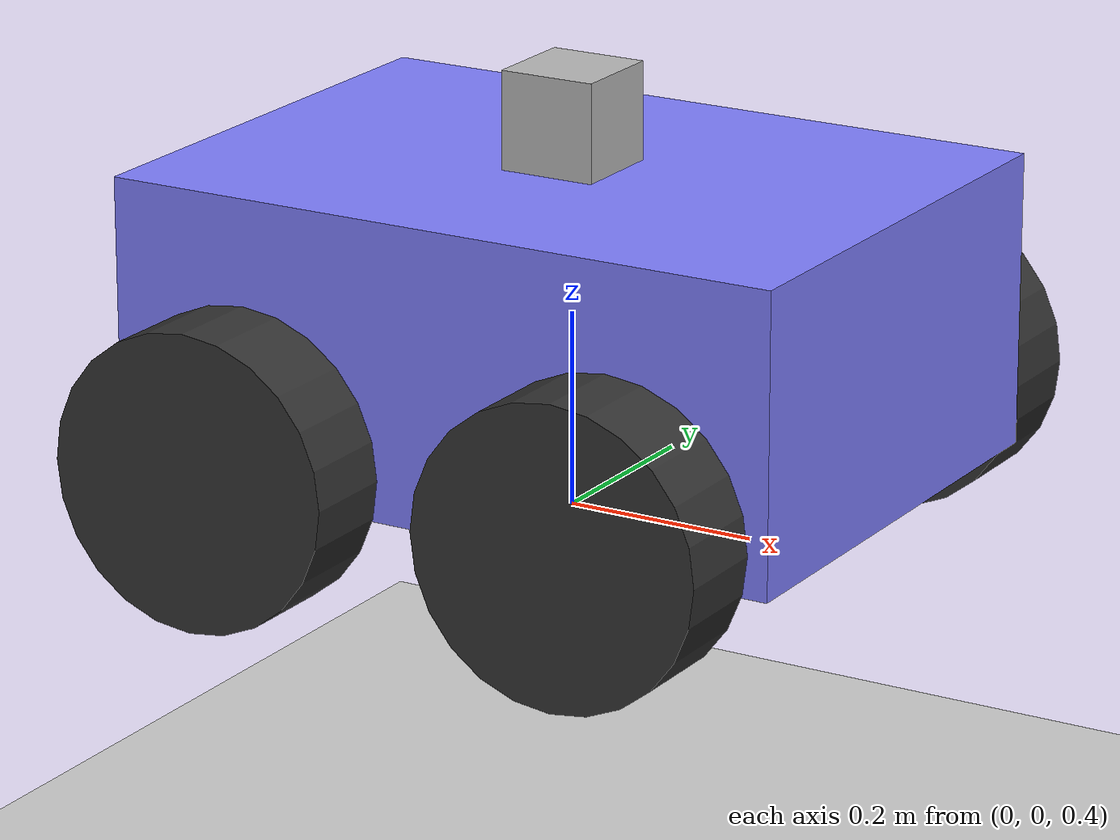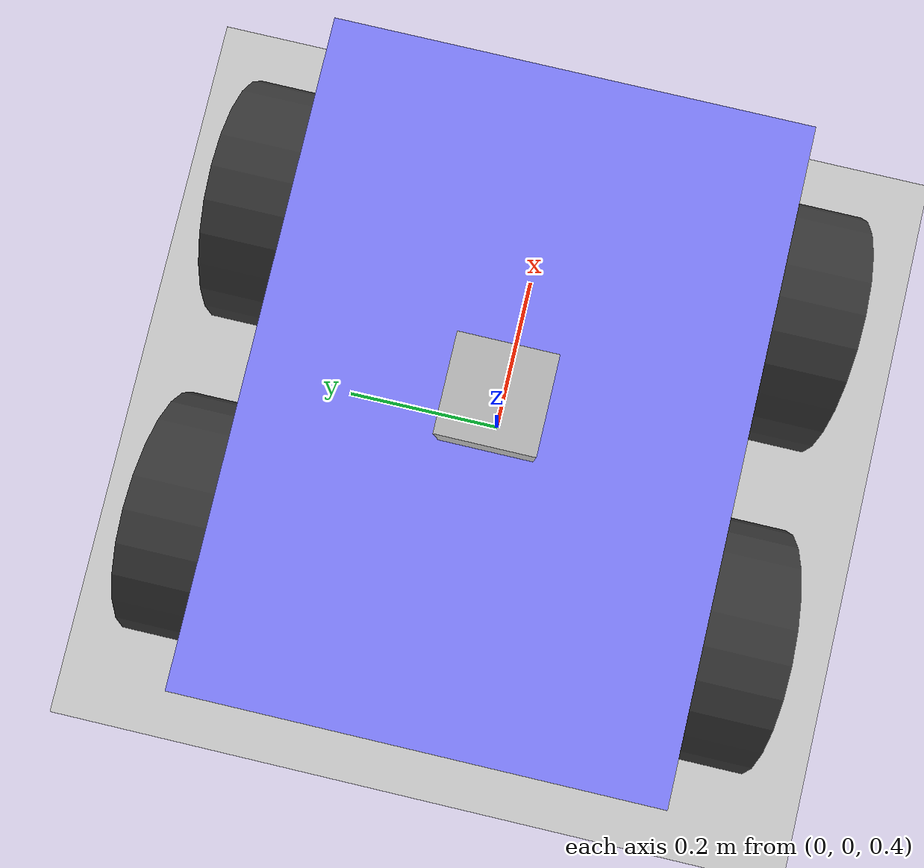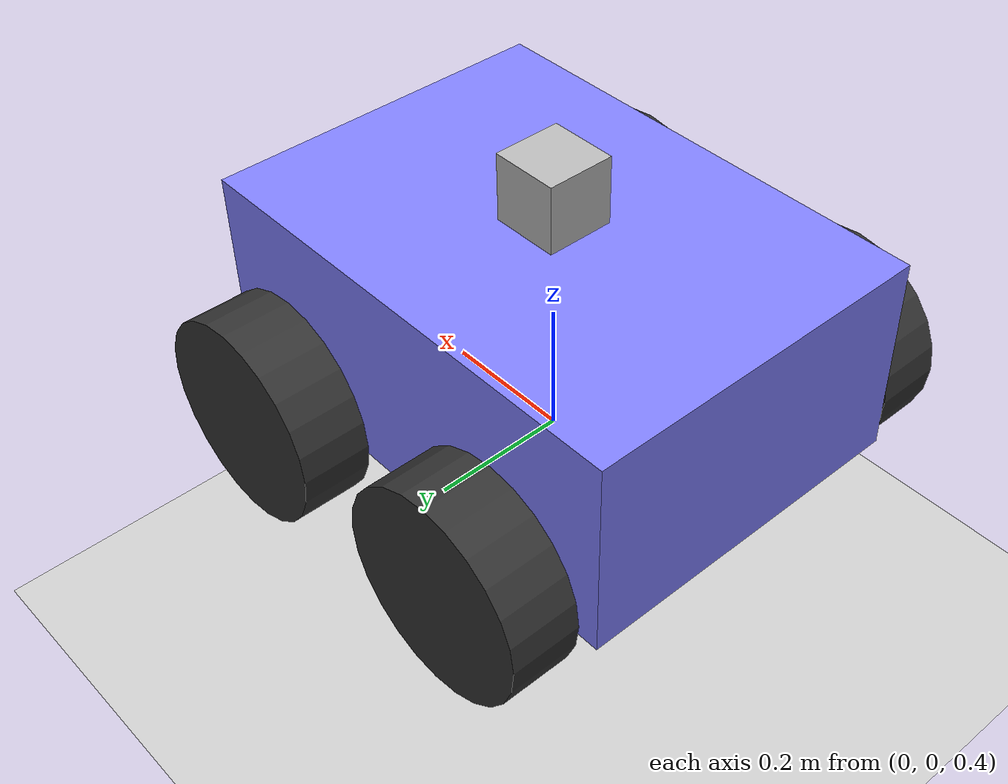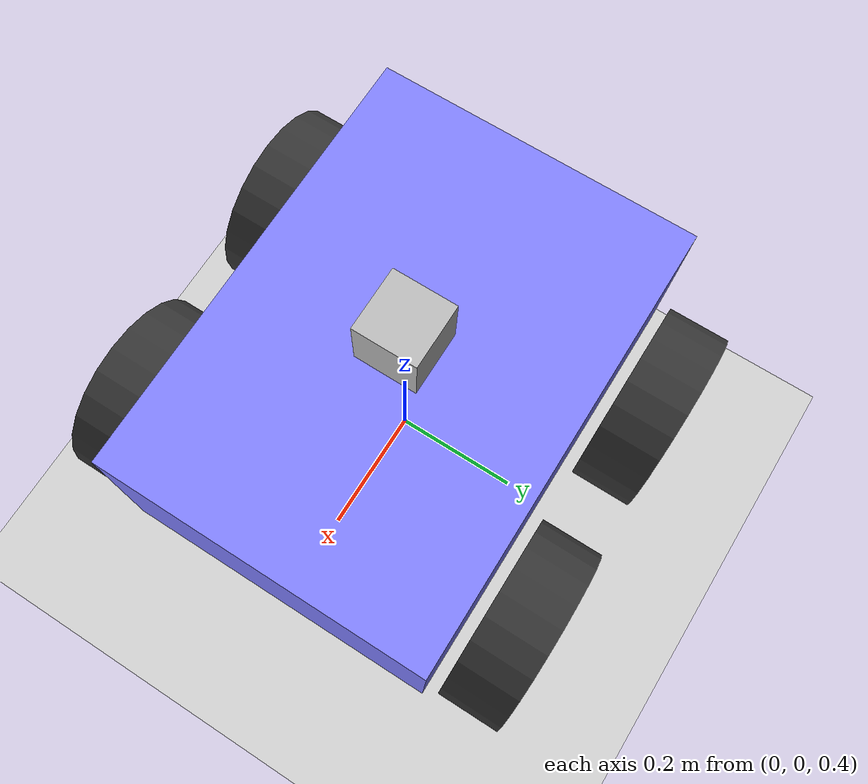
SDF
<?xml version="1.0" ?>
<sdf version="1.8">
  <world name="demo">
    <plugin
      filename="ignition-gazebo-physics-system"
      name="ignition::gazebo::systems::Physics">
    </plugin>
    <plugin
      filename="ignition-gazebo-sensors-system"
      name="ignition::gazebo::systems::Sensors">
      <render_engine>ogre2</render_engine>
    </plugin>
    <plugin
      filename="ignition-gazebo-scene-broadcaster-system"
      name="ignition::gazebo::systems::SceneBroadcaster">
    </plugin>
    <plugin
      filename="ignition-gazebo-user-commands-system"
      name="ignition::gazebo::systems::UserCommands">
    </plugin>
    <!-- MAYBE NEEDED? -->

    <light name="sun" type="directional">
      <cast_shadows>true</cast_shadows>
      <pose>0 0 10 0 0 0</pose>
      <diffuse>0.8 0.8 0.8 1</diffuse>
      <specular>0.2 0.2 0.2 1</specular>
      <attenuation>
        <range>1000</range>
        <constant>0.9</constant>
        <linear>0.01</linear>
        <quadratic>0.001</quadratic>
      </attenuation>
      <direction>-0.5 0.1 -0.9</direction>
    </light>

    <model name="ground_plane">
      <static>true</static>
      <link name="link">
        <collision name="collision">
          <geometry>
            <plane>
              <normal>0 0 1</normal>
              <size>100 100</size>
            </plane>
          </geometry>
        </collision>
        <visual name="visual">
          <geometry>
            <plane>
              <normal>0 0 1</normal>
              <size>100 100</size>
            </plane>
          </geometry>
          <material>
            <ambient>0.8 0.8 0.8 1</ambient>
            <diffuse>0.8 0.8 0.8 1</diffuse>
            <specular>0.8 0.8 0.8 1</specular>
          </material>
        </visual>
      </link>
    </model>

    <!-- TODO: Add Marsyard terrain with obstacles and aruco tags etc... -->

    <model name="rover">
      <self_collide>true</self_collide>
      <pose>0 0 0.35 0 0 0</pose>
      <include merge="true">
        <uri>package://crater_description/models/rover</uri>
      </include>

      <plugin
        filename="ignition-gazebo-joint-state-publisher-system"
        name="ignition::gazebo::systems::JointStatePublisher">
      </plugin>

      <plugin
        filename="ignition-gazebo-odometry-publisher-system"
        name="ignition::gazebo::systems::OdometryPublisher">
        <odom_frame>odom</odom_frame>
        <robot_base_frame>base_link</robot_base_frame>
      </plugin>
    </model>

  </world>
</sdf>

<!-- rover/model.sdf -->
<sdf version="1.8">
    <model name='rover'>
    <link name="base_link">
      <pose>0 0 0 0 0 0</pose> <!-- Base at world origin -->
      <inertial>
        <mass>0.1</mass> <!-- Very small mass for base_link -->
        <inertia>
          <ixx>0.0001</ixx>
          <iyy>0.0001</iyy>
          <izz>0.0001</izz>
        </inertia>
      </inertial>
    </link>
      <link name='chassis'>
        <!-- Chassis center height: Ground Clearance (0.10) + Half Height (0.15) = 0.25 (approx) -->
        <!-- Center of box is at 0 0 0 in local frame, so we lift the link pose -->
        <pose>0 0 0.25 0 0 0</pose>
        <inertial>
          <mass>20</mass>
          <inertia>
            <!-- Box 20kg, 0.72 x 0.52 x 0.30 -->
            <!-- Ixx = 1/12 * m * (y^2 + z^2) = 1.66 * (0.2704 + 0.09) = 0.60 -->
            <ixx>0.60</ixx>
            <ixy>0</ixy>
            <ixz>0</ixz>
            <!-- Iyy = 1/12 * m * (x^2 + z^2) = 1.66 * (0.5184 + 0.09) = 1.01 -->
            <iyy>1.01</iyy>
            <iyz>0</iyz>
            <!-- Izz = 1/12 * m * (x^2 + y^2) = 1.66 * (0.5184 + 0.2704) = 1.31 -->
            <izz>1.31</izz>
          </inertia>
        </inertial>
        <visual name='visual_chassis'>
          <geometry>
            <box>
              <size>0.72 0.52 0.30</size>
            </box>
          </geometry>
          <material>
            <ambient>0.5 0.5 1.0 1</ambient>
            <diffuse>0.5 0.5 1.0 1</diffuse>
            <specular>0.0 0.0 1.0 1</specular>
          </material>
        </visual>
        <collision name='collision_chassis'>
          <geometry>
            <box>
              <size>0.72 0.52 0.30</size>
            </box>
          </geometry>
        </collision>
      </link>

      <!-- Rear Left Wheel -->
      <link name='rear_left_wheel'>
        <pose>-0.2 0.33 0.15 -1.5707 0 0</pose>
        <inertial>
          <mass>2</mass>
          <inertia>
            <ixx>0.0125</ixx> <!-- Cylinder approximation -->
            <ixy>0</ixy>
            <ixz>0</ixz>
            <iyy>0.0125</iyy>
            <iyz>0</iyz>
            <izz>0.0225</izz>
          </inertia>
        </inertial>
        <visual name='visual_rear_left_wheel'>
          <geometry>
            <cylinder>
              <radius>0.15</radius>
              <length>0.1</length>
            </cylinder>
          </geometry>
          <material>
            <ambient>0.2 0.2 0.2 1</ambient>
            <diffuse>0.2 0.2 0.2 1</diffuse>
            <specular>0.2 0.2 0.2 1</specular>
          </material>
        </visual>
        <collision name='collision_rear_left_wheel'>
          <geometry>
             <cylinder>
              <radius>0.15</radius>
              <length>0.1</length>
            </cylinder>
          </geometry>
          <surface>
            <friction>
              <ode>
                <mu>1.0</mu>
                <mu2>0.01</mu2>
                <slip1>0.0</slip1>
                <slip2>1.0</slip2>
              </ode>
            </friction>
          </surface>
        </collision>
      </link>

      <!-- Rear Right Wheel -->
      <link name='rear_right_wheel'>
        <pose>-0.2 -0.33 0.15 -1.5707 0 0</pose>
        <inertial>
          <mass>2</mass>
          <inertia>
            <ixx>0.0125</ixx>
            <ixy>0</ixy>
            <ixz>0</ixz>
            <iyy>0.0125</iyy>
            <iyz>0</iyz>
            <izz>0.0225</izz>
          </inertia>
        </inertial>
        <visual name='visual_rear_right_wheel'>
          <geometry>
            <cylinder>
              <radius>0.15</radius>
              <length>0.1</length>
            </cylinder>
          </geometry>
          <material>
            <ambient>0.2 0.2 0.2 1</ambient>
            <diffuse>0.2 0.2 0.2 1</diffuse>
            <specular>0.2 0.2 0.2 1</specular>
          </material>
        </visual>
        <collision name='collision_rear_right_wheel'>
          <geometry>
            <cylinder>
              <radius>0.15</radius>
              <length>0.1</length>
            </cylinder>
          </geometry>
          <surface>
            <friction>
              <ode>
                <mu>1.0</mu>
                <mu2>0.01</mu2>
                <slip1>0.0</slip1>
                <slip2>1.0</slip2>
              </ode>
            </friction>
          </surface>
        </collision>
      </link>

      <!-- Front Left Wheel -->
      <link name='front_left_wheel'>
        <pose>0.2 0.33 0.15 -1.5707 0 0</pose>
        <inertial>
          <mass>2</mass>
          <inertia>
            <ixx>0.0125</ixx> <!-- Cylinder approximation -->
            <ixy>0</ixy>
            <ixz>0</ixz>
            <iyy>0.0125</iyy>
            <iyz>0</iyz>
            <izz>0.0225</izz>
          </inertia>
        </inertial>
        <visual name='visual_front_left_wheel'>
          <geometry>
            <cylinder>
              <radius>0.15</radius>
              <length>0.1</length>
            </cylinder>
          </geometry>
          <material>
            <ambient>0.2 0.2 0.2 1</ambient>
            <diffuse>0.2 0.2 0.2 1</diffuse>
            <specular>0.2 0.2 0.2 1</specular>
          </material>
        </visual>
        <collision name='collision_front_left_wheel'>
          <geometry>
             <cylinder>
              <radius>0.15</radius>
              <length>0.1</length>
            </cylinder>
          </geometry>
          <surface>
            <friction>
              <ode>
                <mu>1.0</mu>
                <mu2>0.01</mu2>
                <slip1>0.0</slip1>
                <slip2>1.0</slip2>
              </ode>
            </friction>
          </surface>
        </collision>
      </link>

      <!-- Front Right Wheel -->
      <link name='front_right_wheel'>
        <pose>0.2 -0.33 0.15 -1.5707 0 0</pose>
        <inertial>
          <mass>2</mass>
          <inertia>
            <ixx>0.0125</ixx>
            <ixy>0</ixy>
            <ixz>0</ixz>
            <iyy>0.0125</iyy>
            <iyz>0</iyz>
            <izz>0.0225</izz>
          </inertia>
        </inertial>
        <visual name='visual_front_right_wheel'>
          <geometry>
            <cylinder>
              <radius>0.15</radius>
              <length>0.1</length>
            </cylinder>
          </geometry>
          <material>
            <ambient>0.2 0.2 0.2 1</ambient>
            <diffuse>0.2 0.2 0.2 1</diffuse>
            <specular>0.2 0.2 0.2 1</specular>
          </material>
        </visual>
        <collision name='collision_front_right_wheel'>
          <geometry>
            <cylinder>
              <radius>0.15</radius>
              <length>0.1</length>
            </cylinder>
          </geometry>
          <surface>
            <friction>
              <ode>
                <mu>1.0</mu>
                <mu2>0.01</mu2>
                <slip1>0.0</slip1>
                <slip2>1.0</slip2>
              </ode>
            </friction>
          </surface>
        </collision>
      </link>

      <link name="lidar_link">
        <pose>0 0 0.45 0 0 0</pose>
        <inertial>
          <mass>0.1</mass>
          <inertia>
            <ixx>0.00016</ixx>
            <iyy>0.00016</iyy>
            <izz>0.00016</izz>
          </inertia>
        </inertial>
        <collision name="collision">
          <geometry>
            <box>
              <size>0.1 0.1 0.1</size>
            </box>
          </geometry>
        </collision>
        <visual name="visual">
          <geometry>
            <box>
              <size>0.1 0.1 0.1</size>
            </box>
          </geometry>
        </visual>
        <sensor name='gpu_lidar' type='gpu_lidar'>
          <pose>0 0 0 0 0 0</pose>
          <topic>scan</topic>
           <gz_frame_id>rover/lidar_link</gz_frame_id>
          <update_rate>10</update_rate>
          <lidar>
            <scan>
              <horizontal>
                <samples>640</samples>
                <resolution>1</resolution>
                <min_angle>-1.396263</min_angle>
                <max_angle>1.396263</max_angle>
              </horizontal>
              <vertical>
                <samples>1</samples>
                <resolution>1</resolution>
                <min_angle>0.0</min_angle>
                <max_angle>0.0</max_angle>
              </vertical>
            </scan>
            <range>
              <min>0.08</min>
              <max>10.0</max>
              <resolution>0.01</resolution>
            </range>
          </lidar>
          <visualize>true</visualize>
        </sensor>
      </link>

      <joint name="base_to_chassis" type="fixed">
        <parent>base_link</parent>
        <child>chassis</child>
      </joint>

      <joint name='lidar_joint' type='fixed'>
        <parent>chassis</parent>
        <child>lidar_link</child>
      </joint>

      <joint name='rear_left_wheel_joint' type='revolute'>
        <parent>chassis</parent>
        <child>rear_left_wheel</child>
        <axis>
          <xyz>0 0 1</xyz>
          <limit>
            <lower>-1.79769e+308</lower>
            <upper>1.79769e+308</upper>
          </limit>
        </axis>
      </joint>

      <joint name='rear_right_wheel_joint' type='revolute'>
        <parent>chassis</parent>
        <child>rear_right_wheel</child>
        <axis>
          <xyz>0 0 1</xyz>
          <limit>
            <lower>-1.79769e+308</lower>
            <upper>1.79769e+308</upper>
          </limit>
        </axis>
      </joint>

      <joint name='front_left_wheel_joint' type='revolute'>
        <parent>chassis</parent>
        <child>front_left_wheel</child>
        <axis>
          <xyz>0 0 1</xyz>
          <limit>
            <lower>-1.79769e+308</lower>
            <upper>1.79769e+308</upper>
          </limit>
        </axis>
      </joint>

      <joint name='front_right_wheel_joint' type='revolute'>
        <parent>chassis</parent>
        <child>front_right_wheel</child>
        <axis>
          <xyz>0 0 1</xyz>
          <limit>
            <lower>-1.79769e+308</lower>
            <upper>1.79769e+308</upper>
          </limit>
        </axis>
      </joint>

      <plugin
        filename="gz-sim-joint-controller-system"
        name="gz::sim::systems::JointController">
        <joint_name>front_left_wheel_joint</joint_name>
        <topic>/model/rover/front_left_wheel_vel_cmd</topic>
        <use_velocity_commands>true</use_velocity_commands>
      </plugin>

      <plugin
        filename="gz-sim-joint-controller-system"
        name="gz::sim::systems::JointController">
        <joint_name>rear_left_wheel_joint</joint_name>
        <topic>/model/rover/rear_left_wheel_vel_cmd</topic>
        <use_velocity_commands>true</use_velocity_commands>
      </plugin>

      <plugin
        filename="gz-sim-joint-controller-system"
        name="gz::sim::systems::JointController">
        <joint_name>front_right_wheel_joint</joint_name>
        <topic>/model/rover/front_right_wheel_vel_cmd</topic>
        <use_velocity_commands>true</use_velocity_commands>
      </plugin>

      <plugin
        filename="gz-sim-joint-controller-system"
        name="gz::sim::systems::JointController">
        <joint_name>rear_right_wheel_joint</joint_name>
        <topic>/model/rover/rear_right_wheel_vel_cmd</topic>
        <use_velocity_commands>true</use_velocity_commands>
      </plugin>
    </model>
</sdf>
